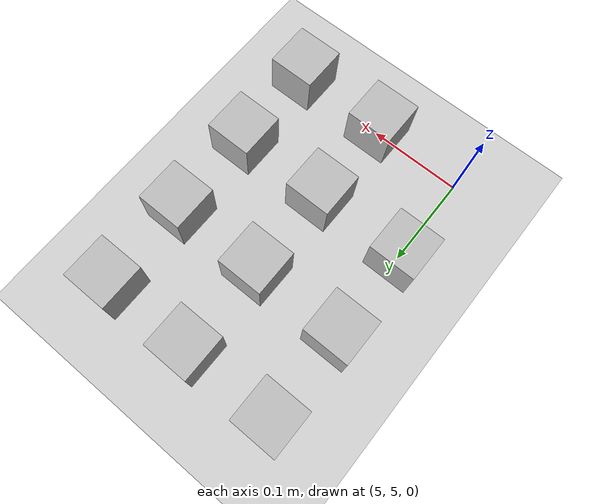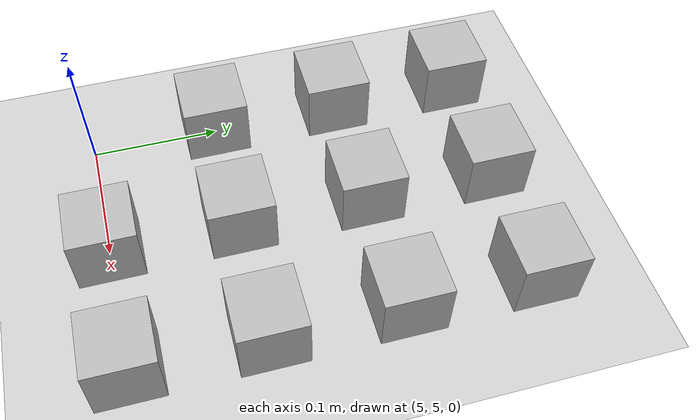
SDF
<sdf version="5.1">
 <world name="default">
  <model name="ground_plane">
   <static>1</static>
   <link name="link">
    <collision name="collision">
     <geometry><plane><normal>0 0 1</normal><size>100 100</size></plane></geometry>
     <surface><friction><ode><mu>100</mu><mu2>50</mu2></ode></friction></surface>
    </collision>
    <visual name="visual">
     <cast_shadows>0</cast_shadows>
     <geometry><plane><normal>0 0 1</normal><size>100 100</size></plane></geometry>
     <material>
      <script><uri>file://media/materials/scripts/gazebo.material</uri><name>Gazebo/Grey</name></script>
     </material>
    </visual>
   </link>
  </model>
  <model name="at64">
   <static>0</static>
   <link name="link">
    <inertial>
     <mass>0.01</mass>
     <inertia><ixx>4e-05</ixx><ixy>0</ixy><ixz>0</ixz><iyy>4e-05</iyy><iyz>0</iyz><izz>4e-05</izz></inertia>
    </inertial>
    <visual name="visual">
     <geometry><box><size>0.05 0.05 0.05</size></box></geometry>
     <material>
      <script>
       <uri>model://at0/materials/scripts</uri>
       <uri>model://at0/materials/textures</uri>
       <name>at0/Diffuse</name>
      </script>
     </material>
    </visual>
    <collision name="collision">
     <geometry><box><size>0.05 0.05 0.05</size></box></geometry>
     <surface><friction><ode><mu>0.8</mu><mu2>0.7</mu2></ode></friction></surface>
    </collision>
   </link>
   <pose>5.0 5.2 0.025 0 -0 0</pose>
  </model>
  <model name="at65">
   <static>0</static>
   <link name="link">
    <inertial>
     <mass>0.01</mass>
     <inertia><ixx>4e-05</ixx><ixy>0</ixy><ixz>0</ixz><iyy>4e-05</iyy><iyz>0</iyz><izz>4e-05</izz></inertia>
    </inertial>
    <visual name="visual">
     <geometry><box><size>0.05 0.05 0.05</size></box></geometry>
     <material>
      <script>
       <uri>model://at0/materials/scripts</uri>
       <uri>model://at0/materials/textures</uri>
       <name>at0/Diffuse</name>
      </script>
     </material>
    </visual>
    <collision name="collision">
     <geometry><box><size>0.05 0.05 0.05</size></box></geometry>
     <surface><friction><ode><mu>0.8</mu><mu2>0.7</mu2></ode></friction></surface>
    </collision>
   </link>
   <pose>5.1 5.2 0.025 0 -0 0</pose>
  </model>
  <model name="at66">
   <static>0</static>
   <link name="link">
    <inertial>
     <mass>0.01</mass>
     <inertia><ixx>4e-05</ixx><ixy>0</ixy><ixz>0</ixz><iyy>4e-05</iyy><iyz>0</iyz><izz>4e-05</izz></inertia>
    </inertial>
    <visual name="visual">
     <geometry><box><size>0.05 0.05 0.05</size></box></geometry>
     <material>
      <script>
       <uri>model://at0/materials/scripts</uri>
       <uri>model://at0/materials/textures</uri>
       <name>at0/Diffuse</name>
      </script>
     </material>
    </visual>
    <collision name="collision">
     <geometry><box><size>0.05 0.05 0.05</size></box></geometry>
     <surface><friction><ode><mu>0.8</mu><mu2>0.7</mu2></ode></friction></surface>
    </collision>
   </link>
   <pose>5.2 5.2 0.025 0 -0 0</pose>
  </model>
  <model name="at72">
   <static>0</static>
   <link name="link">
    <inertial>
     <mass>0.01</mass>
     <inertia><ixx>4e-05</ixx><ixy>0</ixy><ixz>0</ixz><iyy>4e-05</iyy><iyz>0</iyz><izz>4e-05</izz></inertia>
    </inertial>
    <visual name="visual">
     <geometry><box><size>0.05 0.05 0.05</size></box></geometry>
     <material>
      <script>
       <uri>model://at0/materials/scripts</uri>
       <uri>model://at0/materials/textures</uri>
       <name>at0/Diffuse</name>
      </script>
     </material>
    </visual>
    <collision name="collision">
     <geometry><box><size>0.05 0.05 0.05</size></box></geometry>
     <surface><friction><ode><mu>0.8</mu><mu2>0.7</mu2></ode></friction></surface>
    </collision>
   </link>
   <pose>5.0 5.1 0.025 0 -0 0</pose>
  </model>
  <model name="at73">
   <static>0</static>
   <link name="link">
    <inertial>
     <mass>0.01</mass>
     <inertia><ixx>4e-05</ixx><ixy>0</ixy><ixz>0</ixz><iyy>4e-05</iyy><iyz>0</iyz><izz>4e-05</izz></inertia>
    </inertial>
    <visual name="visual">
     <geometry><box><size>0.05 0.05 0.05</size></box></geometry>
     <material>
      <script>
       <uri>model://at0/materials/scripts</uri>
       <uri>model://at0/materials/textures</uri>
       <name>at0/Diffuse</name>
      </script>
     </material>
    </visual>
    <collision name="collision">
     <geometry><box><size>0.05 0.05 0.05</size></box></geometry>
     <surface><friction><ode><mu>0.8</mu><mu2>0.7</mu2></ode></friction></surface>
    </collision>
   </link>
   <pose>5.1 5.1 0.025 0 -0 0</pose>
  </model>
  <model name="at74">
   <static>0</static>
   <link name="link">
    <inertial>
     <mass>0.01</mass>
     <inertia><ixx>4e-05</ixx><ixy>0</ixy><ixz>0</ixz><iyy>4e-05</iyy><iyz>0</iyz><izz>4e-05</izz></inertia>
    </inertial>
    <visual name="visual">
     <geometry><box><size>0.05 0.05 0.05</size></box></geometry>
     <material>
      <script>
       <uri>model://at0/materials/scripts</uri>
       <uri>model://at0/materials/textures</uri>
       <name>at0/Diffuse</name>
      </script>
     </material>
    </visual>
    <collision name="collision">
     <geometry><box><size>0.05 0.05 0.05</size></box></geometry>
     <surface><friction><ode><mu>0.8</mu><mu2>0.7</mu2></ode></friction></surface>
    </collision>
   </link>
   <pose>5.2 5.1 0.025 0 -0 0</pose>
  </model>
  <model name="at81">
   <static>0</static>
   <link name="link">
    <inertial>
     <mass>0.01</mass>
     <inertia><ixx>4e-05</ixx><ixy>0</ixy><ixz>0</ixz><iyy>4e-05</iyy><iyz>0</iyz><izz>4e-05</izz></inertia>
    </inertial>
    <visual name="visual">
     <geometry><box><size>0.05 0.05 0.05</size></box></geometry>
     <material>
      <script>
       <uri>model://at0/materials/scripts</uri>
       <uri>model://at0/materials/textures</uri>
       <name>at0/Diffuse</name>
      </script>
     </material>
    </visual>
    <collision name="collision">
     <geometry><box><size>0.05 0.05 0.05</size></box></geometry>
     <surface><friction><ode><mu>0.8</mu><mu2>0.7</mu2></ode></friction></surface>
    </collision>
   </link>
   <pose>5.1 5.0 0.025 0 -0 0</pose>
  </model>
  <model name="at82">
   <static>0</static>
   <link name="link">
    <inertial>
     <mass>0.01</mass>
     <inertia><ixx>4e-05</ixx><ixy>0</ixy><ixz>0</ixz><iyy>4e-05</iyy><iyz>0</iyz><izz>4e-05</izz></inertia>
    </inertial>
    <visual name="visual">
     <geometry><box><size>0.05 0.05 0.05</size></box></geometry>
     <material>
      <script>
       <uri>model://at0/materials/scripts</uri>
       <uri>model://at0/materials/textures</uri>
       <name>at0/Diffuse</name>
      </script>
     </material>
    </visual>
    <collision name="collision">
     <geometry><box><size>0.05 0.05 0.05</size></box></geometry>
     <surface><friction><ode><mu>0.8</mu><mu2>0.7</mu2></ode></friction></surface>
    </collision>
   </link>
   <pose>5.2 5.0 0.025 0 -0 0</pose>
  </model>
  <model name="at88">
   <static>0</static>
   <link name="link">
    <inertial>
     <mass>0.01</mass>
     <inertia><ixx>4e-05</ixx><ixy>0</ixy><ixz>0</ixz><iyy>4e-05</iyy><iyz>0</iyz><izz>4e-05</izz></inertia>
    </inertial>
    <visual name="visual">
     <geometry><box><size>0.05 0.05 0.05</size></box></geometry>
     <material>
      <script>
       <uri>model://at0/materials/scripts</uri>
       <uri>model://at0/materials/textures</uri>
       <name>at0/Diffuse</name>
      </script>
     </material>
    </visual>
    <collision name="collision">
     <geometry><box><size>0.05 0.05 0.05</size></box></geometry>
     <surface><friction><ode><mu>0.8</mu><mu2>0.7</mu2></ode></friction></surface>
    </collision>
   </link>
   <pose>5.0 5.3 0.025 0 -0 0</pose>
  </model>
  <model name="at89">
   <static>0</static>
   <link name="link">
    <inertial>
     <mass>0.01</mass>
     <inertia><ixx>4e-05</ixx><ixy>0</ixy><ixz>0</ixz><iyy>4e-05</iyy><iyz>0</iyz><izz>4e-05</izz></inertia>
    </inertial>
    <visual name="visual">
     <geometry><box><size>0.05 0.05 0.05</size></box></geometry>
     <material>
      <script>
       <uri>model://at0/materials/scripts</uri>
       <uri>model://at0/materials/textures</uri>
       <name>at0/Diffuse</name>
      </script>
     </material>
    </visual>
    <collision name="collision">
     <geometry><box><size>0.05 0.05 0.05</size></box></geometry>
     <surface><friction><ode><mu>0.8</mu><mu2>0.7</mu2></ode></friction></surface>
    </collision>
   </link>
   <pose>5.1 5.3 0.025 0 -0 0</pose>
  </model>
  <model name="at90">
   <static>0</static>
   <link name="link">
    <inertial>
     <mass>0.01</mass>
     <inertia><ixx>4e-05</ixx><ixy>0</ixy><ixz>0</ixz><iyy>4e-05</iyy><iyz>0</iyz><izz>4e-05</izz></inertia>
    </inertial>
    <visual name="visual">
     <geometry><box><size>0.05 0.05 0.05</size></box></geometry>
     <material>
      <script>
       <uri>model://at0/materials/scripts</uri>
       <uri>model://at0/materials/textures</uri>
       <name>at0/Diffuse</name>
      </script>
     </material>
    </visual>
    <collision name="collision">
     <geometry><box><size>0.05 0.05 0.05</size></box></geometry>
     <surface><friction><ode><mu>0.8</mu><mu2>0.7</mu2></ode></friction></surface>
    </collision>
   </link>
   <pose>5.2 5.3 0.025 0 -0 0</pose>
  </model>
 </world>
</sdf>
